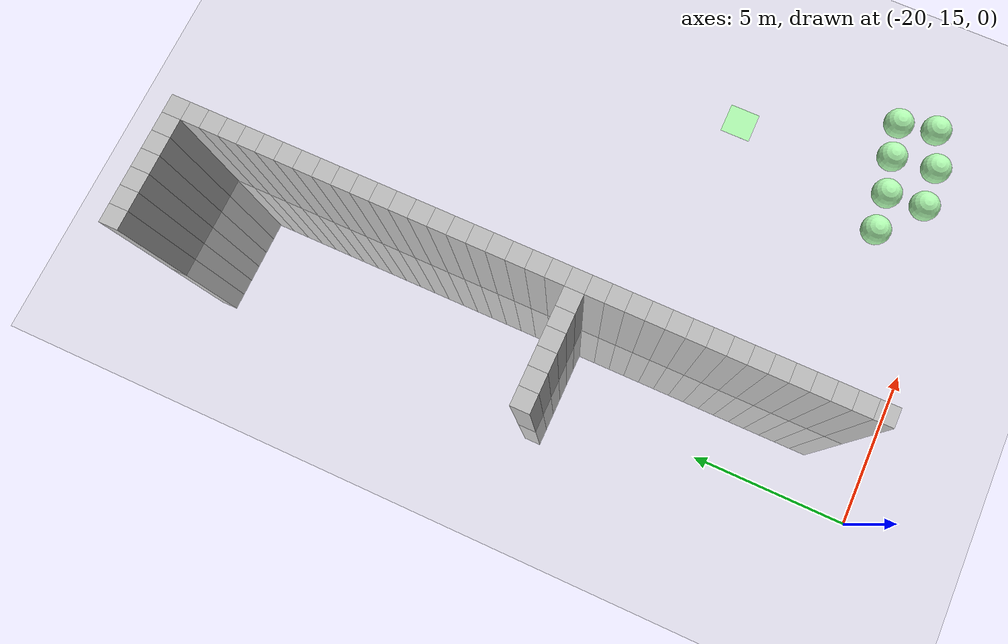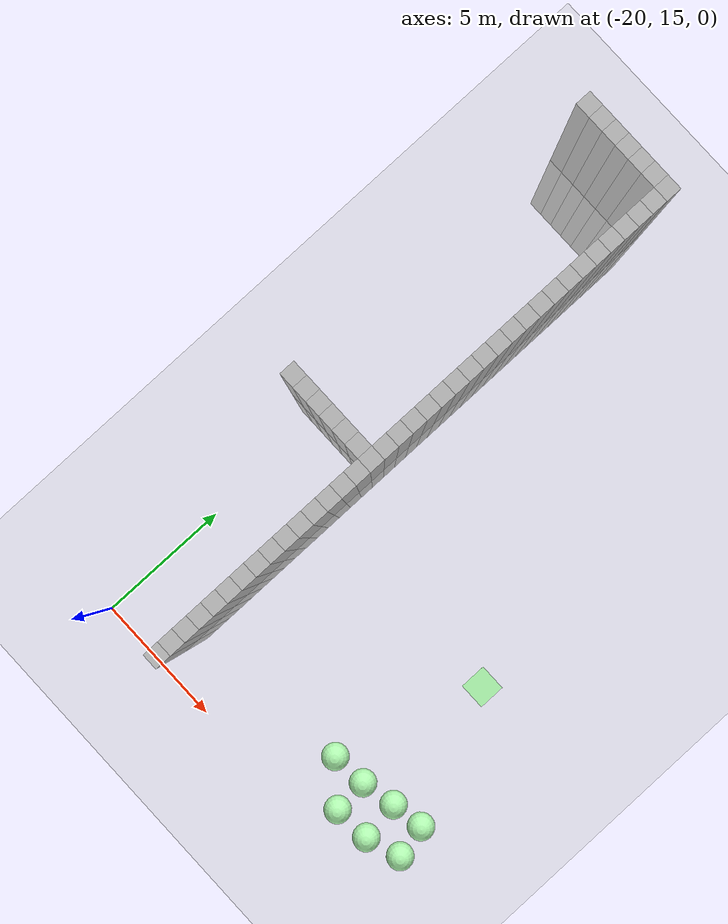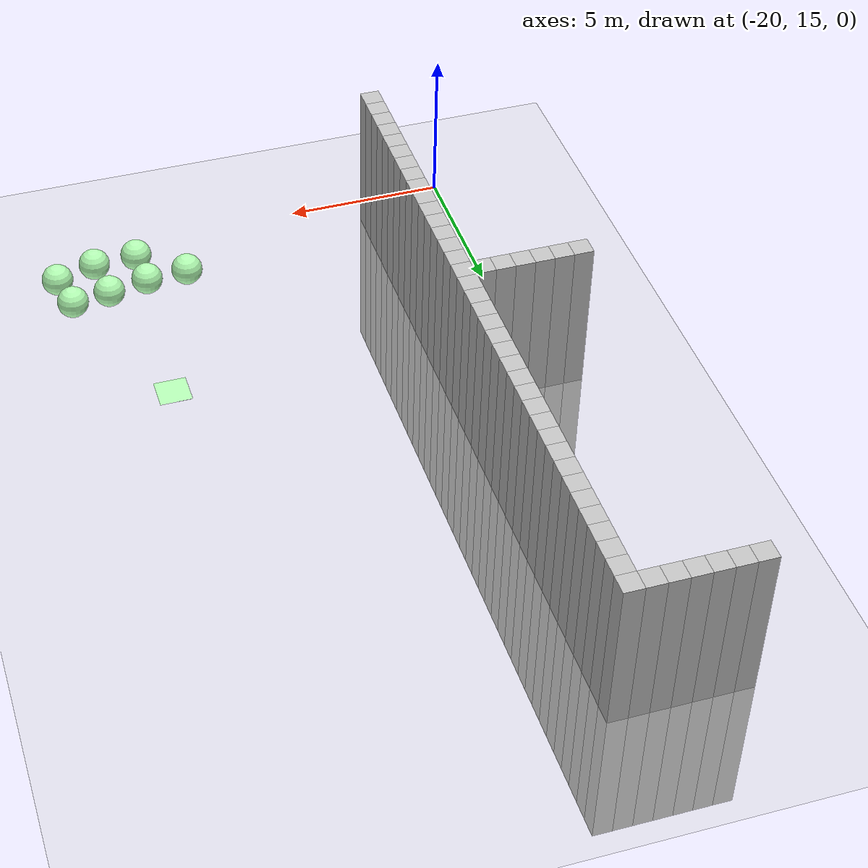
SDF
<sdf version="1.6">
 <world name="default">
  <model name="ground_plane">
   <static>1</static>
   <link name="link">
    <collision name="collision">
     <geometry><plane><normal>0 0 1</normal><size>100 100</size></plane></geometry>
     <surface><friction><ode><mu>100</mu><mu2>50</mu2></ode></friction></surface>
    </collision>
    <visual name="visual">
     <cast_shadows>0</cast_shadows>
     <geometry><plane><normal>0 0 1</normal><size>100 100</size></plane></geometry>
     <material>
      <script><uri>file://media/materials/scripts/gazebo.material</uri><name>Gazebo/Grey</name></script>
     </material>
    </visual>
   </link>
  </model>
  <model name="unit_cylinder_455">
   <static>1</static>
   <pose>-21 25.2 0 0 -0 0</pose>
   <link name="link">
    <inertial>
     <mass>1</mass>
     <inertia><ixx>0.145833</ixx><ixy>0</ixy><ixz>0</ixz><iyy>0.145833</iyy><iyz>0</iyz><izz>0.125</izz></inertia>
    </inertial>
    <collision name="collision"><geometry><box><size>0.6 0.6 10</size></box></geometry></collision>
    <visual name="visual">
     <geometry><box><size>0.6 0.6 10</size></box></geometry>
     <material><ambient>0.753 0.753 0.753 1</ambient><diffuse>0.753 0.753 0.753 1</diffuse></material>
     <material>
      <script><name>Gazebo/Grey</name><uri>file://media/materials/scripts/gazebo.material</uri></script>
     </material>
    </visual>
   </link>
  </model>
  <model name="unit_cylinder_456">
   <static>1</static>
   <pose>-21 37.8 0 0 -0 0</pose>
   <link name="link">
    <inertial>
     <mass>1</mass>
     <inertia><ixx>0.145833</ixx><ixy>0</ixy><ixz>0</ixz><iyy>0.145833</iyy><iyz>0</iyz><izz>0.125</izz></inertia>
    </inertial>
    <collision name="collision"><geometry><box><size>0.6 0.6 10</size></box></geometry></collision>
    <visual name="visual">
     <geometry><box><size>0.6 0.6 10</size></box></geometry>
     <material><ambient>0.753 0.753 0.753 1</ambient><diffuse>0.753 0.753 0.753 1</diffuse></material>
     <material>
      <script><name>Gazebo/Grey</name><uri>file://media/materials/scripts/gazebo.material</uri></script>
     </material>
    </visual>
   </link>
  </model>
  <model name="unit_cylinder_459">
   <static>1</static>
   <pose>-20.4 25.2 0 0 -0 0</pose>
   <link name="link">
    <inertial>
     <mass>1</mass>
     <inertia><ixx>0.145833</ixx><ixy>0</ixy><ixz>0</ixz><iyy>0.145833</iyy><iyz>0</iyz><izz>0.125</izz></inertia>
    </inertial>
    <collision name="collision"><geometry><box><size>0.6 0.6 10</size></box></geometry></collision>
    <visual name="visual">
     <geometry><box><size>0.6 0.6 10</size></box></geometry>
     <material><ambient>0.753 0.753 0.753 1</ambient><diffuse>0.753 0.753 0.753 1</diffuse></material>
     <material>
      <script><name>Gazebo/Grey</name><uri>file://media/materials/scripts/gazebo.material</uri></script>
     </material>
    </visual>
   </link>
  </model>
  <model name="unit_cylinder_460">
   <static>1</static>
   <pose>-20.4 37.8 0 0 -0 0</pose>
   <link name="link">
    <inertial>
     <mass>1</mass>
     <inertia><ixx>0.145833</ixx><ixy>0</ixy><ixz>0</ixz><iyy>0.145833</iyy><iyz>0</iyz><izz>0.125</izz></inertia>
    </inertial>
    <collision name="collision"><geometry><box><size>0.6 0.6 10</size></box></geometry></collision>
    <visual name="visual">
     <geometry><box><size>0.6 0.6 10</size></box></geometry>
     <material><ambient>0.753 0.753 0.753 1</ambient><diffuse>0.753 0.753 0.753 1</diffuse></material>
     <material>
      <script><name>Gazebo/Grey</name><uri>file://media/materials/scripts/gazebo.material</uri></script>
     </material>
    </visual>
   </link>
  </model>
  <model name="unit_cylinder_463">
   <static>1</static>
   <pose>-19.8 25.2 0 0 -0 0</pose>
   <link name="link">
    <inertial>
     <mass>1</mass>
     <inertia><ixx>0.145833</ixx><ixy>0</ixy><ixz>0</ixz><iyy>0.145833</iyy><iyz>0</iyz><izz>0.125</izz></inertia>
    </inertial>
    <collision name="collision"><geometry><box><size>0.6 0.6 10</size></box></geometry></collision>
    <visual name="visual">
     <geometry><box><size>0.6 0.6 10</size></box></geometry>
     <material><ambient>0.753 0.753 0.753 1</ambient><diffuse>0.753 0.753 0.753 1</diffuse></material>
     <material>
      <script><name>Gazebo/Grey</name><uri>file://media/materials/scripts/gazebo.material</uri></script>
     </material>
    </visual>
   </link>
  </model>
  <model name="unit_cylinder_464">
   <static>1</static>
   <pose>-19.8 37.8 0 0 -0 0</pose>
   <link name="link">
    <inertial>
     <mass>1</mass>
     <inertia><ixx>0.145833</ixx><ixy>0</ixy><ixz>0</ixz><iyy>0.145833</iyy><iyz>0</iyz><izz>0.125</izz></inertia>
    </inertial>
    <collision name="collision"><geometry><box><size>0.6 0.6 10</size></box></geometry></collision>
    <visual name="visual">
     <geometry><box><size>0.6 0.6 10</size></box></geometry>
     <material><ambient>0.753 0.753 0.753 1</ambient><diffuse>0.753 0.753 0.753 1</diffuse></material>
     <material>
      <script><name>Gazebo/Grey</name><uri>file://media/materials/scripts/gazebo.material</uri></script>
     </material>
    </visual>
   </link>
  </model>
  <model name="unit_cylinder_467">
   <static>1</static>
   <pose>-19.2 25.2 0 0 -0 0</pose>
   <link name="link">
    <inertial>
     <mass>1</mass>
     <inertia><ixx>0.145833</ixx><ixy>0</ixy><ixz>0</ixz><iyy>0.145833</iyy><iyz>0</iyz><izz>0.125</izz></inertia>
    </inertial>
    <collision name="collision"><geometry><box><size>0.6 0.6 10</size></box></geometry></collision>
    <visual name="visual">
     <geometry><box><size>0.6 0.6 10</size></box></geometry>
     <material><ambient>0.753 0.753 0.753 1</ambient><diffuse>0.753 0.753 0.753 1</diffuse></material>
     <material>
      <script><name>Gazebo/Grey</name><uri>file://media/materials/scripts/gazebo.material</uri></script>
     </material>
    </visual>
   </link>
  </model>
  <model name="unit_cylinder_468">
   <static>1</static>
   <pose>-19.2 37.8 0 0 -0 0</pose>
   <link name="link">
    <inertial>
     <mass>1</mass>
     <inertia><ixx>0.145833</ixx><ixy>0</ixy><ixz>0</ixz><iyy>0.145833</iyy><iyz>0</iyz><izz>0.125</izz></inertia>
    </inertial>
    <collision name="collision"><geometry><box><size>0.6 0.6 10</size></box></geometry></collision>
    <visual name="visual">
     <geometry><box><size>0.6 0.6 10</size></box></geometry>
     <material><ambient>0.753 0.753 0.753 1</ambient><diffuse>0.753 0.753 0.753 1</diffuse></material>
     <material>
      <script><name>Gazebo/Grey</name><uri>file://media/materials/scripts/gazebo.material</uri></script>
     </material>
    </visual>
   </link>
  </model>
  <model name="unit_cylinder_471">
   <static>1</static>
   <pose>-18.6 25.2 0 0 -0 0</pose>
   <link name="link">
    <inertial>
     <mass>1</mass>
     <inertia><ixx>0.145833</ixx><ixy>0</ixy><ixz>0</ixz><iyy>0.145833</iyy><iyz>0</iyz><izz>0.125</izz></inertia>
    </inertial>
    <collision name="collision"><geometry><box><size>0.6 0.6 10</size></box></geometry></collision>
    <visual name="visual">
     <geometry><box><size>0.6 0.6 10</size></box></geometry>
     <material><ambient>0.753 0.753 0.753 1</ambient><diffuse>0.753 0.753 0.753 1</diffuse></material>
     <material>
      <script><name>Gazebo/Grey</name><uri>file://media/materials/scripts/gazebo.material</uri></script>
     </material>
    </visual>
   </link>
  </model>
  <model name="unit_cylinder_472">
   <static>1</static>
   <pose>-18.6 37.8 0 0 -0 0</pose>
   <link name="link">
    <inertial>
     <mass>1</mass>
     <inertia><ixx>0.145833</ixx><ixy>0</ixy><ixz>0</ixz><iyy>0.145833</iyy><iyz>0</iyz><izz>0.125</izz></inertia>
    </inertial>
    <collision name="collision"><geometry><box><size>0.6 0.6 10</size></box></geometry></collision>
    <visual name="visual">
     <geometry><box><size>0.6 0.6 10</size></box></geometry>
     <material><ambient>0.753 0.753 0.753 1</ambient><diffuse>0.753 0.753 0.753 1</diffuse></material>
     <material>
      <script><name>Gazebo/Grey</name><uri>file://media/materials/scripts/gazebo.material</uri></script>
     </material>
    </visual>
   </link>
  </model>
  <model name="unit_cylinder_475">
   <static>1</static>
   <pose>-18 25.2 0 0 -0 0</pose>
   <link name="link">
    <inertial>
     <mass>1</mass>
     <inertia><ixx>0.145833</ixx><ixy>0</ixy><ixz>0</ixz><iyy>0.145833</iyy><iyz>0</iyz><izz>0.125</izz></inertia>
    </inertial>
    <collision name="collision"><geometry><box><size>0.6 0.6 10</size></box></geometry></collision>
    <visual name="visual">
     <geometry><box><size>0.6 0.6 10</size></box></geometry>
     <material><ambient>0.753 0.753 0.753 1</ambient><diffuse>0.753 0.753 0.753 1</diffuse></material>
     <material>
      <script><name>Gazebo/Grey</name><uri>file://media/materials/scripts/gazebo.material</uri></script>
     </material>
    </visual>
   </link>
  </model>
  <model name="unit_cylinder_476">
   <static>1</static>
   <pose>-18 37.8 0 0 -0 0</pose>
   <link name="link">
    <inertial>
     <mass>1</mass>
     <inertia><ixx>0.145833</ixx><ixy>0</ixy><ixz>0</ixz><iyy>0.145833</iyy><iyz>0</iyz><izz>0.125</izz></inertia>
    </inertial>
    <collision name="collision"><geometry><box><size>0.6 0.6 10</size></box></geometry></collision>
    <visual name="visual">
     <geometry><box><size>0.6 0.6 10</size></box></geometry>
     <material><ambient>0.753 0.753 0.753 1</ambient><diffuse>0.753 0.753 0.753 1</diffuse></material>
     <material>
      <script><name>Gazebo/Grey</name><uri>file://media/materials/scripts/gazebo.material</uri></script>
     </material>
    </visual>
   </link>
  </model>
  <model name="unit_cylinder_504">
   <static>1</static>
   <pose>-17.4 16.2 0 0 -0 0</pose>
   <link name="link">
    <inertial>
     <mass>1</mass>
     <inertia><ixx>0.145833</ixx><ixy>0</ixy><ixz>0</ixz><iyy>0.145833</iyy><iyz>0</iyz><izz>0.125</izz></inertia>
    </inertial>
    <collision name="collision"><geometry><box><size>0.6 0.6 10</size></box></geometry></collision>
    <visual name="visual">
     <geometry><box><size>0.6 0.6 10</size></box></geometry>
     <material><ambient>0.753 0.753 0.753 1</ambient><diffuse>0.753 0.753 0.753 1</diffuse></material>
     <material>
      <script><name>Gazebo/Grey</name><uri>file://media/materials/scripts/gazebo.material</uri></script>
     </material>
    </visual>
   </link>
  </model>
  <model name="unit_cylinder_505">
   <static>1</static>
   <pose>-17.4 16.8 0 0 -0 0</pose>
   <link name="link">
    <inertial>
     <mass>1</mass>
     <inertia><ixx>0.145833</ixx><ixy>0</ixy><ixz>0</ixz><iyy>0.145833</iyy><iyz>0</iyz><izz>0.125</izz></inertia>
    </inertial>
    <collision name="collision"><geometry><box><size>0.6 0.6 10</size></box></geometry></collision>
    <visual name="visual">
     <geometry><box><size>0.6 0.6 10</size></box></geometry>
     <material><ambient>0.753 0.753 0.753 1</ambient><diffuse>0.753 0.753 0.753 1</diffuse></material>
     <material>
      <script><name>Gazebo/Grey</name><uri>file://media/materials/scripts/gazebo.material</uri></script>
     </material>
    </visual>
   </link>
  </model>
  <model name="unit_cylinder_506">
   <static>1</static>
   <pose>-17.4 17.4 0 0 -0 0</pose>
   <link name="link">
    <inertial>
     <mass>1</mass>
     <inertia><ixx>0.145833</ixx><ixy>0</ixy><ixz>0</ixz><iyy>0.145833</iyy><iyz>0</iyz><izz>0.125</izz></inertia>
    </inertial>
    <collision name="collision"><geometry><box><size>0.6 0.6 10</size></box></geometry></collision>
    <visual name="visual">
     <geometry><box><size>0.6 0.6 10</size></box></geometry>
     <material><ambient>0.753 0.753 0.753 1</ambient><diffuse>0.753 0.753 0.753 1</diffuse></material>
     <material>
      <script><name>Gazebo/Grey</name><uri>file://media/materials/scripts/gazebo.material</uri></script>
     </material>
    </visual>
   </link>
  </model>
  <model name="unit_cylinder_507">
   <static>1</static>
   <pose>-17.4 18 0 0 -0 0</pose>
   <link name="link">
    <inertial>
     <mass>1</mass>
     <inertia><ixx>0.145833</ixx><ixy>0</ixy><ixz>0</ixz><iyy>0.145833</iyy><iyz>0</iyz><izz>0.125</izz></inertia>
    </inertial>
    <collision name="collision"><geometry><box><size>0.6 0.6 10</size></box></geometry></collision>
    <visual name="visual">
     <geometry><box><size>0.6 0.6 10</size></box></geometry>
     <material><ambient>0.753 0.753 0.753 1</ambient><diffuse>0.753 0.753 0.753 1</diffuse></material>
     <material>
      <script><name>Gazebo/Grey</name><uri>file://media/materials/scripts/gazebo.material</uri></script>
     </material>
    </visual>
   </link>
  </model>
  <model name="unit_cylinder_508">
   <static>1</static>
   <pose>-17.4 18.6 0 0 -0 0</pose>
   <link name="link">
    <inertial>
     <mass>1</mass>
     <inertia><ixx>0.145833</ixx><ixy>0</ixy><ixz>0</ixz><iyy>0.145833</iyy><iyz>0</iyz><izz>0.125</izz></inertia>
    </inertial>
    <collision name="collision"><geometry><box><size>0.6 0.6 10</size></box></geometry></collision>
    <visual name="visual">
     <geometry><box><size>0.6 0.6 10</size></box></geometry>
     <material><ambient>0.753 0.753 0.753 1</ambient><diffuse>0.753 0.753 0.753 1</diffuse></material>
     <material>
      <script><name>Gazebo/Grey</name><uri>file://media/materials/scripts/gazebo.material</uri></script>
     </material>
    </visual>
   </link>
  </model>
  <model name="unit_cylinder_509">
   <static>1</static>
   <pose>-17.4 19.2 0 0 -0 0</pose>
   <link name="link">
    <inertial>
     <mass>1</mass>
     <inertia><ixx>0.145833</ixx><ixy>0</ixy><ixz>0</ixz><iyy>0.145833</iyy><iyz>0</iyz><izz>0.125</izz></inertia>
    </inertial>
    <collision name="collision"><geometry><box><size>0.6 0.6 10</size></box></geometry></collision>
    <visual name="visual">
     <geometry><box><size>0.6 0.6 10</size></box></geometry>
     <material><ambient>0.753 0.753 0.753 1</ambient><diffuse>0.753 0.753 0.753 1</diffuse></material>
     <material>
      <script><name>Gazebo/Grey</name><uri>file://media/materials/scripts/gazebo.material</uri></script>
     </material>
    </visual>
   </link>
  </model>
  <model name="unit_cylinder_510">
   <static>1</static>
   <pose>-17.4 19.8 0 0 -0 0</pose>
   <link name="link">
    <inertial>
     <mass>1</mass>
     <inertia><ixx>0.145833</ixx><ixy>0</ixy><ixz>0</ixz><iyy>0.145833</iyy><iyz>0</iyz><izz>0.125</izz></inertia>
    </inertial>
    <collision name="collision"><geometry><box><size>0.6 0.6 10</size></box></geometry></collision>
    <visual name="visual">
     <geometry><box><size>0.6 0.6 10</size></box></geometry>
     <material><ambient>0.753 0.753 0.753 1</ambient><diffuse>0.753 0.753 0.753 1</diffuse></material>
     <material>
      <script><name>Gazebo/Grey</name><uri>file://media/materials/scripts/gazebo.material</uri></script>
     </material>
    </visual>
   </link>
  </model>
  <model name="unit_cylinder_511">
   <static>1</static>
   <pose>-17.4 20.4 0 0 -0 0</pose>
   <link name="link">
    <inertial>
     <mass>1</mass>
     <inertia><ixx>0.145833</ixx><ixy>0</ixy><ixz>0</ixz><iyy>0.145833</iyy><iyz>0</iyz><izz>0.125</izz></inertia>
    </inertial>
    <collision name="collision"><geometry><box><size>0.6 0.6 10</size></box></geometry></collision>
    <visual name="visual">
     <geometry><box><size>0.6 0.6 10</size></box></geometry>
     <material><ambient>0.753 0.753 0.753 1</ambient><diffuse>0.753 0.753 0.753 1</diffuse></material>
     <material>
      <script><name>Gazebo/Grey</name><uri>file://media/materials/scripts/gazebo.material</uri></script>
     </material>
    </visual>
   </link>
  </model>
  <model name="unit_cylinder_512">
   <static>1</static>
   <pose>-17.4 21 0 0 -0 0</pose>
   <link name="link">
    <inertial>
     <mass>1</mass>
     <inertia><ixx>0.145833</ixx><ixy>0</ixy><ixz>0</ixz><iyy>0.145833</iyy><iyz>0</iyz><izz>0.125</izz></inertia>
    </inertial>
    <collision name="collision"><geometry><box><size>0.6 0.6 10</size></box></geometry></collision>
    <visual name="visual">
     <geometry><box><size>0.6 0.6 10</size></box></geometry>
     <material><ambient>0.753 0.753 0.753 1</ambient><diffuse>0.753 0.753 0.753 1</diffuse></material>
     <material>
      <script><name>Gazebo/Grey</name><uri>file://media/materials/scripts/gazebo.material</uri></script>
     </material>
    </visual>
   </link>
  </model>
  <model name="unit_cylinder_513">
   <static>1</static>
   <pose>-17.4 21.6 0 0 -0 0</pose>
   <link name="link">
    <inertial>
     <mass>1</mass>
     <inertia><ixx>0.145833</ixx><ixy>0</ixy><ixz>0</ixz><iyy>0.145833</iyy><iyz>0</iyz><izz>0.125</izz></inertia>
    </inertial>
    <collision name="collision"><geometry><box><size>0.6 0.6 10</size></box></geometry></collision>
    <visual name="visual">
     <geometry><box><size>0.6 0.6 10</size></box></geometry>
     <material><ambient>0.753 0.753 0.753 1</ambient><diffuse>0.753 0.753 0.753 1</diffuse></material>
     <material>
      <script><name>Gazebo/Grey</name><uri>file://media/materials/scripts/gazebo.material</uri></script>
     </material>
    </visual>
   </link>
  </model>
  <model name="unit_cylinder_514">
   <static>1</static>
   <pose>-17.4 22.2 0 0 -0 0</pose>
   <link name="link">
    <inertial>
     <mass>1</mass>
     <inertia><ixx>0.145833</ixx><ixy>0</ixy><ixz>0</ixz><iyy>0.145833</iyy><iyz>0</iyz><izz>0.125</izz></inertia>
    </inertial>
    <collision name="collision"><geometry><box><size>0.6 0.6 10</size></box></geometry></collision>
    <visual name="visual">
     <geometry><box><size>0.6 0.6 10</size></box></geometry>
     <material><ambient>0.753 0.753 0.753 1</ambient><diffuse>0.753 0.753 0.753 1</diffuse></material>
     <material>
      <script><name>Gazebo/Grey</name><uri>file://media/materials/scripts/gazebo.material</uri></script>
     </material>
    </visual>
   </link>
  </model>
  <model name="unit_cylinder_515">
   <static>1</static>
   <pose>-17.4 22.8 0 0 -0 0</pose>
   <link name="link">
    <inertial>
     <mass>1</mass>
     <inertia><ixx>0.145833</ixx><ixy>0</ixy><ixz>0</ixz><iyy>0.145833</iyy><iyz>0</iyz><izz>0.125</izz></inertia>
    </inertial>
    <collision name="collision"><geometry><box><size>0.6 0.6 10</size></box></geometry></collision>
    <visual name="visual">
     <geometry><box><size>0.6 0.6 10</size></box></geometry>
     <material><ambient>0.753 0.753 0.753 1</ambient><diffuse>0.753 0.753 0.753 1</diffuse></material>
     <material>
      <script><name>Gazebo/Grey</name><uri>file://media/materials/scripts/gazebo.material</uri></script>
     </material>
    </visual>
   </link>
  </model>
  <model name="unit_cylinder_516">
   <static>1</static>
   <pose>-17.4 23.4 0 0 -0 0</pose>
   <link name="link">
    <inertial>
     <mass>1</mass>
     <inertia><ixx>0.145833</ixx><ixy>0</ixy><ixz>0</ixz><iyy>0.145833</iyy><iyz>0</iyz><izz>0.125</izz></inertia>
    </inertial>
    <collision name="collision"><geometry><box><size>0.6 0.6 10</size></box></geometry></collision>
    <visual name="visual">
     <geometry><box><size>0.6 0.6 10</size></box></geometry>
     <material><ambient>0.753 0.753 0.753 1</ambient><diffuse>0.753 0.753 0.753 1</diffuse></material>
     <material>
      <script><name>Gazebo/Grey</name><uri>file://media/materials/scripts/gazebo.material</uri></script>
     </material>
    </visual>
   </link>
  </model>
  <model name="unit_cylinder_517">
   <static>1</static>
   <pose>-17.4 24 0 0 -0 0</pose>
   <link name="link">
    <inertial>
     <mass>1</mass>
     <inertia><ixx>0.145833</ixx><ixy>0</ixy><ixz>0</ixz><iyy>0.145833</iyy><iyz>0</iyz><izz>0.125</izz></inertia>
    </inertial>
    <collision name="collision"><geometry><box><size>0.6 0.6 10</size></box></geometry></collision>
    <visual name="visual">
     <geometry><box><size>0.6 0.6 10</size></box></geometry>
     <material><ambient>0.753 0.753 0.753 1</ambient><diffuse>0.753 0.753 0.753 1</diffuse></material>
     <material>
      <script><name>Gazebo/Grey</name><uri>file://media/materials/scripts/gazebo.material</uri></script>
     </material>
    </visual>
   </link>
  </model>
  <model name="unit_cylinder_518">
   <static>1</static>
   <pose>-17.4 24.6 0 0 -0 0</pose>
   <link name="link">
    <inertial>
     <mass>1</mass>
     <inertia><ixx>0.145833</ixx><ixy>0</ixy><ixz>0</ixz><iyy>0.145833</iyy><iyz>0</iyz><izz>0.125</izz></inertia>
    </inertial>
    <collision name="collision"><geometry><box><size>0.6 0.6 10</size></box></geometry></collision>
    <visual name="visual">
     <geometry><box><size>0.6 0.6 10</size></box></geometry>
     <material><ambient>0.753 0.753 0.753 1</ambient><diffuse>0.753 0.753 0.753 1</diffuse></material>
     <material>
      <script><name>Gazebo/Grey</name><uri>file://media/materials/scripts/gazebo.material</uri></script>
     </material>
    </visual>
   </link>
  </model>
  <model name="unit_cylinder_519">
   <static>1</static>
   <pose>-17.4 25.2 0 0 -0 0</pose>
   <link name="link">
    <inertial>
     <mass>1</mass>
     <inertia><ixx>0.145833</ixx><ixy>0</ixy><ixz>0</ixz><iyy>0.145833</iyy><iyz>0</iyz><izz>0.125</izz></inertia>
    </inertial>
    <collision name="collision"><geometry><box><size>0.6 0.6 10</size></box></geometry></collision>
    <visual name="visual">
     <geometry><box><size>0.6 0.6 10</size></box></geometry>
     <material><ambient>0.753 0.753 0.753 1</ambient><diffuse>0.753 0.753 0.753 1</diffuse></material>
     <material>
      <script><name>Gazebo/Grey</name><uri>file://media/materials/scripts/gazebo.material</uri></script>
     </material>
    </visual>
   </link>
  </model>
  <model name="unit_cylinder_520">
   <static>1</static>
   <pose>-17.4 25.8 0 0 -0 0</pose>
   <link name="link">
    <inertial>
     <mass>1</mass>
     <inertia><ixx>0.145833</ixx><ixy>0</ixy><ixz>0</ixz><iyy>0.145833</iyy><iyz>0</iyz><izz>0.125</izz></inertia>
    </inertial>
    <collision name="collision"><geometry><box><size>0.6 0.6 10</size></box></geometry></collision>
    <visual name="visual">
     <geometry><box><size>0.6 0.6 10</size></box></geometry>
     <material><ambient>0.753 0.753 0.753 1</ambient><diffuse>0.753 0.753 0.753 1</diffuse></material>
     <material>
      <script><name>Gazebo/Grey</name><uri>file://media/materials/scripts/gazebo.material</uri></script>
     </material>
    </visual>
   </link>
  </model>
  <model name="unit_cylinder_521">
   <static>1</static>
   <pose>-17.4 26.4 0 0 -0 0</pose>
   <link name="link">
    <inertial>
     <mass>1</mass>
     <inertia><ixx>0.145833</ixx><ixy>0</ixy><ixz>0</ixz><iyy>0.145833</iyy><iyz>0</iyz><izz>0.125</izz></inertia>
    </inertial>
    <collision name="collision"><geometry><box><size>0.6 0.6 10</size></box></geometry></collision>
    <visual name="visual">
     <geometry><box><size>0.6 0.6 10</size></box></geometry>
     <material><ambient>0.753 0.753 0.753 1</ambient><diffuse>0.753 0.753 0.753 1</diffuse></material>
     <material>
      <script><name>Gazebo/Grey</name><uri>file://media/materials/scripts/gazebo.material</uri></script>
     </material>
    </visual>
   </link>
  </model>
  <model name="unit_cylinder_522">
   <static>1</static>
   <pose>-17.4 27 0 0 -0 0</pose>
   <link name="link">
    <inertial>
     <mass>1</mass>
     <inertia><ixx>0.145833</ixx><ixy>0</ixy><ixz>0</ixz><iyy>0.145833</iyy><iyz>0</iyz><izz>0.125</izz></inertia>
    </inertial>
    <collision name="collision"><geometry><box><size>0.6 0.6 10</size></box></geometry></collision>
    <visual name="visual">
     <geometry><box><size>0.6 0.6 10</size></box></geometry>
     <material><ambient>0.753 0.753 0.753 1</ambient><diffuse>0.753 0.753 0.753 1</diffuse></material>
     <material>
      <script><name>Gazebo/Grey</name><uri>file://media/materials/scripts/gazebo.material</uri></script>
     </material>
    </visual>
   </link>
  </model>
  <model name="unit_cylinder_523">
   <static>1</static>
   <pose>-17.4 27.6 0 0 -0 0</pose>
   <link name="link">
    <inertial>
     <mass>1</mass>
     <inertia><ixx>0.145833</ixx><ixy>0</ixy><ixz>0</ixz><iyy>0.145833</iyy><iyz>0</iyz><izz>0.125</izz></inertia>
    </inertial>
    <collision name="collision"><geometry><box><size>0.6 0.6 10</size></box></geometry></collision>
    <visual name="visual">
     <geometry><box><size>0.6 0.6 10</size></box></geometry>
     <material><ambient>0.753 0.753 0.753 1</ambient><diffuse>0.753 0.753 0.753 1</diffuse></material>
     <material>
      <script><name>Gazebo/Grey</name><uri>file://media/materials/scripts/gazebo.material</uri></script>
     </material>
    </visual>
   </link>
  </model>
  <model name="unit_cylinder_524">
   <static>1</static>
   <pose>-17.4 28.2 0 0 -0 0</pose>
   <link name="link">
    <inertial>
     <mass>1</mass>
     <inertia><ixx>0.145833</ixx><ixy>0</ixy><ixz>0</ixz><iyy>0.145833</iyy><iyz>0</iyz><izz>0.125</izz></inertia>
    </inertial>
    <collision name="collision"><geometry><box><size>0.6 0.6 10</size></box></geometry></collision>
    <visual name="visual">
     <geometry><box><size>0.6 0.6 10</size></box></geometry>
     <material><ambient>0.753 0.753 0.753 1</ambient><diffuse>0.753 0.753 0.753 1</diffuse></material>
     <material>
      <script><name>Gazebo/Grey</name><uri>file://media/materials/scripts/gazebo.material</uri></script>
     </material>
    </visual>
   </link>
  </model>
  <model name="unit_cylinder_525">
   <static>1</static>
   <pose>-17.4 28.8 0 0 -0 0</pose>
   <link name="link">
    <inertial>
     <mass>1</mass>
     <inertia><ixx>0.145833</ixx><ixy>0</ixy><ixz>0</ixz><iyy>0.145833</iyy><iyz>0</iyz><izz>0.125</izz></inertia>
    </inertial>
    <collision name="collision"><geometry><box><size>0.6 0.6 10</size></box></geometry></collision>
    <visual name="visual">
     <geometry><box><size>0.6 0.6 10</size></box></geometry>
     <material><ambient>0.753 0.753 0.753 1</ambient><diffuse>0.753 0.753 0.753 1</diffuse></material>
     <material>
      <script><name>Gazebo/Grey</name><uri>file://media/materials/scripts/gazebo.material</uri></script>
     </material>
    </visual>
   </link>
  </model>
  <model name="unit_cylinder_526">
   <static>1</static>
   <pose>-17.4 29.4 0 0 -0 0</pose>
   <link name="link">
    <inertial>
     <mass>1</mass>
     <inertia><ixx>0.145833</ixx><ixy>0</ixy><ixz>0</ixz><iyy>0.145833</iyy><iyz>0</iyz><izz>0.125</izz></inertia>
    </inertial>
    <collision name="collision"><geometry><box><size>0.6 0.6 10</size></box></geometry></collision>
    <visual name="visual">
     <geometry><box><size>0.6 0.6 10</size></box></geometry>
     <material><ambient>0.753 0.753 0.753 1</ambient><diffuse>0.753 0.753 0.753 1</diffuse></material>
     <material>
      <script><name>Gazebo/Grey</name><uri>file://media/materials/scripts/gazebo.material</uri></script>
     </material>
    </visual>
   </link>
  </model>
  <model name="unit_cylinder_527">
   <static>1</static>
   <pose>-17.4 30 0 0 -0 0</pose>
   <link name="link">
    <inertial>
     <mass>1</mass>
     <inertia><ixx>0.145833</ixx><ixy>0</ixy><ixz>0</ixz><iyy>0.145833</iyy><iyz>0</iyz><izz>0.125</izz></inertia>
    </inertial>
    <collision name="collision"><geometry><box><size>0.6 0.6 10</size></box></geometry></collision>
    <visual name="visual">
     <geometry><box><size>0.6 0.6 10</size></box></geometry>
     <material><ambient>0.753 0.753 0.753 1</ambient><diffuse>0.753 0.753 0.753 1</diffuse></material>
     <material>
      <script><name>Gazebo/Grey</name><uri>file://media/materials/scripts/gazebo.material</uri></script>
     </material>
    </visual>
   </link>
  </model>
  <model name="unit_cylinder_528">
   <static>1</static>
   <pose>-17.4 30.6 0 0 -0 0</pose>
   <link name="link">
    <inertial>
     <mass>1</mass>
     <inertia><ixx>0.145833</ixx><ixy>0</ixy><ixz>0</ixz><iyy>0.145833</iyy><iyz>0</iyz><izz>0.125</izz></inertia>
    </inertial>
    <collision name="collision"><geometry><box><size>0.6 0.6 10</size></box></geometry></collision>
    <visual name="visual">
     <geometry><box><size>0.6 0.6 10</size></box></geometry>
     <material><ambient>0.753 0.753 0.753 1</ambient><diffuse>0.753 0.753 0.753 1</diffuse></material>
     <material>
      <script><name>Gazebo/Grey</name><uri>file://media/materials/scripts/gazebo.material</uri></script>
     </material>
    </visual>
   </link>
  </model>
  <model name="unit_cylinder_529">
   <static>1</static>
   <pose>-17.4 31.2 0 0 -0 0</pose>
   <link name="link">
    <inertial>
     <mass>1</mass>
     <inertia><ixx>0.145833</ixx><ixy>0</ixy><ixz>0</ixz><iyy>0.145833</iyy><iyz>0</iyz><izz>0.125</izz></inertia>
    </inertial>
    <collision name="collision"><geometry><box><size>0.6 0.6 10</size></box></geometry></collision>
    <visual name="visual">
     <geometry><box><size>0.6 0.6 10</size></box></geometry>
     <material><ambient>0.753 0.753 0.753 1</ambient><diffuse>0.753 0.753 0.753 1</diffuse></material>
     <material>
      <script><name>Gazebo/Grey</name><uri>file://media/materials/scripts/gazebo.material</uri></script>
     </material>
    </visual>
   </link>
  </model>
  <model name="unit_cylinder_530">
   <static>1</static>
   <pose>-17.4 31.8 0 0 -0 0</pose>
   <link name="link">
    <inertial>
     <mass>1</mass>
     <inertia><ixx>0.145833</ixx><ixy>0</ixy><ixz>0</ixz><iyy>0.145833</iyy><iyz>0</iyz><izz>0.125</izz></inertia>
    </inertial>
    <collision name="collision"><geometry><box><size>0.6 0.6 10</size></box></geometry></collision>
    <visual name="visual">
     <geometry><box><size>0.6 0.6 10</size></box></geometry>
     <material><ambient>0.753 0.753 0.753 1</ambient><diffuse>0.753 0.753 0.753 1</diffuse></material>
     <material>
      <script><name>Gazebo/Grey</name><uri>file://media/materials/scripts/gazebo.material</uri></script>
     </material>
    </visual>
   </link>
  </model>
  <model name="unit_cylinder_531">
   <static>1</static>
   <pose>-17.4 32.4 0 0 -0 0</pose>
   <link name="link">
    <inertial>
     <mass>1</mass>
     <inertia><ixx>0.145833</ixx><ixy>0</ixy><ixz>0</ixz><iyy>0.145833</iyy><iyz>0</iyz><izz>0.125</izz></inertia>
    </inertial>
    <collision name="collision"><geometry><box><size>0.6 0.6 10</size></box></geometry></collision>
    <visual name="visual">
     <geometry><box><size>0.6 0.6 10</size></box></geometry>
     <material><ambient>0.753 0.753 0.753 1</ambient><diffuse>0.753 0.753 0.753 1</diffuse></material>
     <material>
      <script><name>Gazebo/Grey</name><uri>file://media/materials/scripts/gazebo.material</uri></script>
     </material>
    </visual>
   </link>
  </model>
  <model name="unit_cylinder_532">
   <static>1</static>
   <pose>-17.4 33 0 0 -0 0</pose>
   <link name="link">
    <inertial>
     <mass>1</mass>
     <inertia><ixx>0.145833</ixx><ixy>0</ixy><ixz>0</ixz><iyy>0.145833</iyy><iyz>0</iyz><izz>0.125</izz></inertia>
    </inertial>
    <collision name="collision"><geometry><box><size>0.6 0.6 10</size></box></geometry></collision>
    <visual name="visual">
     <geometry><box><size>0.6 0.6 10</size></box></geometry>
     <material><ambient>0.753 0.753 0.753 1</ambient><diffuse>0.753 0.753 0.753 1</diffuse></material>
     <material>
      <script><name>Gazebo/Grey</name><uri>file://media/materials/scripts/gazebo.material</uri></script>
     </material>
    </visual>
   </link>
  </model>
  <model name="unit_cylinder_533">
   <static>1</static>
   <pose>-17.4 33.6 0 0 -0 0</pose>
   <link name="link">
    <inertial>
     <mass>1</mass>
     <inertia><ixx>0.145833</ixx><ixy>0</ixy><ixz>0</ixz><iyy>0.145833</iyy><iyz>0</iyz><izz>0.125</izz></inertia>
    </inertial>
    <collision name="collision"><geometry><box><size>0.6 0.6 10</size></box></geometry></collision>
    <visual name="visual">
     <geometry><box><size>0.6 0.6 10</size></box></geometry>
     <material><ambient>0.753 0.753 0.753 1</ambient><diffuse>0.753 0.753 0.753 1</diffuse></material>
     <material>
      <script><name>Gazebo/Grey</name><uri>file://media/materials/scripts/gazebo.material</uri></script>
     </material>
    </visual>
   </link>
  </model>
  <model name="unit_cylinder_534">
   <static>1</static>
   <pose>-17.4 34.2 0 0 -0 0</pose>
   <link name="link">
    <inertial>
     <mass>1</mass>
     <inertia><ixx>0.145833</ixx><ixy>0</ixy><ixz>0</ixz><iyy>0.145833</iyy><iyz>0</iyz><izz>0.125</izz></inertia>
    </inertial>
    <collision name="collision"><geometry><box><size>0.6 0.6 10</size></box></geometry></collision>
    <visual name="visual">
     <geometry><box><size>0.6 0.6 10</size></box></geometry>
     <material><ambient>0.753 0.753 0.753 1</ambient><diffuse>0.753 0.753 0.753 1</diffuse></material>
     <material>
      <script><name>Gazebo/Grey</name><uri>file://media/materials/scripts/gazebo.material</uri></script>
     </material>
    </visual>
   </link>
  </model>
  <model name="unit_cylinder_535">
   <static>1</static>
   <pose>-17.4 34.8 0 0 -0 0</pose>
   <link name="link">
    <inertial>
     <mass>1</mass>
     <inertia><ixx>0.145833</ixx><ixy>0</ixy><ixz>0</ixz><iyy>0.145833</iyy><iyz>0</iyz><izz>0.125</izz></inertia>
    </inertial>
    <collision name="collision"><geometry><box><size>0.6 0.6 10</size></box></geometry></collision>
    <visual name="visual">
     <geometry><box><size>0.6 0.6 10</size></box></geometry>
     <material><ambient>0.753 0.753 0.753 1</ambient><diffuse>0.753 0.753 0.753 1</diffuse></material>
     <material>
      <script><name>Gazebo/Grey</name><uri>file://media/materials/scripts/gazebo.material</uri></script>
     </material>
    </visual>
   </link>
  </model>
  <model name="unit_cylinder_536">
   <static>1</static>
   <pose>-17.4 35.4 0 0 -0 0</pose>
   <link name="link">
    <inertial>
     <mass>1</mass>
     <inertia><ixx>0.145833</ixx><ixy>0</ixy><ixz>0</ixz><iyy>0.145833</iyy><iyz>0</iyz><izz>0.125</izz></inertia>
    </inertial>
    <collision name="collision"><geometry><box><size>0.6 0.6 10</size></box></geometry></collision>
    <visual name="visual">
     <geometry><box><size>0.6 0.6 10</size></box></geometry>
     <material><ambient>0.753 0.753 0.753 1</ambient><diffuse>0.753 0.753 0.753 1</diffuse></material>
     <material>
      <script><name>Gazebo/Grey</name><uri>file://media/materials/scripts/gazebo.material</uri></script>
     </material>
    </visual>
   </link>
  </model>
  <model name="unit_cylinder_537">
   <static>1</static>
   <pose>-17.4 36 0 0 -0 0</pose>
   <link name="link">
    <inertial>
     <mass>1</mass>
     <inertia><ixx>0.145833</ixx><ixy>0</ixy><ixz>0</ixz><iyy>0.145833</iyy><iyz>0</iyz><izz>0.125</izz></inertia>
    </inertial>
    <collision name="collision"><geometry><box><size>0.6 0.6 10</size></box></geometry></collision>
    <visual name="visual">
     <geometry><box><size>0.6 0.6 10</size></box></geometry>
     <material><ambient>0.753 0.753 0.753 1</ambient><diffuse>0.753 0.753 0.753 1</diffuse></material>
     <material>
      <script><name>Gazebo/Grey</name><uri>file://media/materials/scripts/gazebo.material</uri></script>
     </material>
    </visual>
   </link>
  </model>
  <model name="unit_cylinder_538">
   <static>1</static>
   <pose>-17.4 36.6 0 0 -0 0</pose>
   <link name="link">
    <inertial>
     <mass>1</mass>
     <inertia><ixx>0.145833</ixx><ixy>0</ixy><ixz>0</ixz><iyy>0.145833</iyy><iyz>0</iyz><izz>0.125</izz></inertia>
    </inertial>
    <collision name="collision"><geometry><box><size>0.6 0.6 10</size></box></geometry></collision>
    <visual name="visual">
     <geometry><box><size>0.6 0.6 10</size></box></geometry>
     <material><ambient>0.753 0.753 0.753 1</ambient><diffuse>0.753 0.753 0.753 1</diffuse></material>
     <material>
      <script><name>Gazebo/Grey</name><uri>file://media/materials/scripts/gazebo.material</uri></script>
     </material>
    </visual>
   </link>
  </model>
  <model name="unit_cylinder_539">
   <static>1</static>
   <pose>-17.4 37.2 0 0 -0 0</pose>
   <link name="link">
    <inertial>
     <mass>1</mass>
     <inertia><ixx>0.145833</ixx><ixy>0</ixy><ixz>0</ixz><iyy>0.145833</iyy><iyz>0</iyz><izz>0.125</izz></inertia>
    </inertial>
    <collision name="collision"><geometry><box><size>0.6 0.6 10</size></box></geometry></collision>
    <visual name="visual">
     <geometry><box><size>0.6 0.6 10</size></box></geometry>
     <material><ambient>0.753 0.753 0.753 1</ambient><diffuse>0.753 0.753 0.753 1</diffuse></material>
     <material>
      <script><name>Gazebo/Grey</name><uri>file://media/materials/scripts/gazebo.material</uri></script>
     </material>
    </visual>
   </link>
  </model>
  <model name="unit_cylinder_540">
   <static>1</static>
   <pose>-17.4 37.8 0 0 -0 0</pose>
   <link name="link">
    <inertial>
     <mass>1</mass>
     <inertia><ixx>0.145833</ixx><ixy>0</ixy><ixz>0</ixz><iyy>0.145833</iyy><iyz>0</iyz><izz>0.125</izz></inertia>
    </inertial>
    <collision name="collision"><geometry><box><size>0.6 0.6 10</size></box></geometry></collision>
    <visual name="visual">
     <geometry><box><size>0.6 0.6 10</size></box></geometry>
     <material><ambient>0.753 0.753 0.753 1</ambient><diffuse>0.753 0.753 0.753 1</diffuse></material>
     <material>
      <script><name>Gazebo/Grey</name><uri>file://media/materials/scripts/gazebo.material</uri></script>
     </material>
    </visual>
   </link>
  </model>
  <model name="bouncy_ball">
   <link name="link_0">
    <inertial>
     <mass>0.1</mass>
     <inertia><ixx>1</ixx><ixy>0</ixy><ixz>0</ixz><iyy>1</iyy><iyz>0</iyz><izz>1</izz></inertia>
    </inertial>
    <visual name="visual">
     <geometry><sphere><radius>0.5</radius></sphere></geometry>
     <material>
      <lighting>1</lighting>
      <script><uri>file://media/materials/scripts/gazebo.material</uri><name>Gazebo/Grey</name></script>
      <shader type="pixel"><normal_map>__default__</normal_map></shader>
      <ambient>0 1 0 0</ambient>
      <diffuse>0.7 1 0.7 1</diffuse>
      <specular>0.01 0.01 0.01 1</specular>
      <emissive>0 0 0 1</emissive>
     </material>
    </visual>
    <collision name="collision">
     <geometry><sphere><radius>0.5</radius></sphere></geometry>
     <surface>
      <friction><ode><mu>0</mu><mu2>0</mu2></ode></friction>
      <contact>
       <ode><kp>500000</kp><kd>0</kd><max_vel>1e+26</max_vel><min_depth>0</min_depth></ode>
       <bullet>
        <kp>500000</kp>
        <kd>0</kd>
        <split_impulse>1</split_impulse>
        <split_impulse_penetration_threshold>-0.01</split_impulse_penetration_threshold>
       </bullet>
      </contact>
     </surface>
    </collision>
   </link>
   <static>0</static>
   <pose>-10.8186 17.4304 0.499998 0 -0 0</pose>
  </model>
  <model name="bouncy_ball_clone">
   <link name="link_0">
    <inertial>
     <mass>0.1</mass>
     <inertia><ixx>1</ixx><ixy>0</ixy><ixz>0</ixz><iyy>1</iyy><iyz>0</iyz><izz>1</izz></inertia>
    </inertial>
    <visual name="visual">
     <geometry><sphere><radius>0.5</radius></sphere></geometry>
     <material>
      <lighting>1</lighting>
      <script><uri>file://media/materials/scripts/gazebo.material</uri><name>Gazebo/Grey</name></script>
      <shader type="pixel"><normal_map>__default__</normal_map></shader>
      <ambient>0 1 0 0</ambient>
      <diffuse>0.7 1 0.7 1</diffuse>
      <specular>0.01 0.01 0.01 1</specular>
      <emissive>0 0 0 1</emissive>
     </material>
    </visual>
    <collision name="collision">
     <geometry><sphere><radius>0.5</radius></sphere></geometry>
     <surface>
      <friction><ode><mu>0</mu><mu2>0</mu2></ode></friction>
      <contact>
       <ode><kp>500000</kp><kd>0</kd><max_vel>1e+26</max_vel><min_depth>0</min_depth></ode>
       <bullet>
        <kp>500000</kp>
        <kd>0</kd>
        <split_impulse>1</split_impulse>
        <split_impulse_penetration_threshold>-0.01</split_impulse_penetration_threshold>
       </bullet>
      </contact>
     </surface>
    </collision>
   </link>
   <static>0</static>
   <pose>-9.48818 17.5292 0.499998 0 -0 0</pose>
  </model>
  <model name="bouncy_ball_clone_0">
   <link name="link_0">
    <inertial>
     <mass>0.1</mass>
     <inertia><ixx>1</ixx><ixy>0</ixy><ixz>0</ixz><iyy>1</iyy><iyz>0</iyz><izz>1</izz></inertia>
    </inertial>
    <visual name="visual">
     <geometry><sphere><radius>0.5</radius></sphere></geometry>
     <material>
      <lighting>1</lighting>
      <script><uri>file://media/materials/scripts/gazebo.material</uri><name>Gazebo/Grey</name></script>
      <shader type="pixel"><normal_map>__default__</normal_map></shader>
      <ambient>0 1 0 0</ambient>
      <diffuse>0.7 1 0.7 1</diffuse>
      <specular>0.01 0.01 0.01 1</specular>
      <emissive>0 0 0 1</emissive>
     </material>
    </visual>
    <collision name="collision">
     <geometry><sphere><radius>0.5</radius></sphere></geometry>
     <surface>
      <friction><ode><mu>0</mu><mu2>0</mu2></ode></friction>
      <contact>
       <ode><kp>500000</kp><kd>0</kd><max_vel>1e+26</max_vel><min_depth>0</min_depth></ode>
       <bullet>
        <kp>500000</kp>
        <kd>0</kd>
        <split_impulse>1</split_impulse>
        <split_impulse_penetration_threshold>-0.01</split_impulse_penetration_threshold>
       </bullet>
      </contact>
     </surface>
    </collision>
   </link>
   <static>0</static>
   <pose>-8.20785 17.8022 0.499998 0 -0 0</pose>
  </model>
  <model name="bouncy_ball_clone_1">
   <link name="link_0">
    <inertial>
     <mass>0.1</mass>
     <inertia><ixx>1</ixx><ixy>0</ixy><ixz>0</ixz><iyy>1</iyy><iyz>0</iyz><izz>1</izz></inertia>
    </inertial>
    <visual name="visual">
     <geometry><sphere><radius>0.5</radius></sphere></geometry>
     <material>
      <lighting>1</lighting>
      <script><uri>file://media/materials/scripts/gazebo.material</uri><name>Gazebo/Grey</name></script>
      <shader type="pixel"><normal_map>__default__</normal_map></shader>
      <ambient>0 1 0 0</ambient>
      <diffuse>0.7 1 0.7 1</diffuse>
      <specular>0.01 0.01 0.01 1</specular>
      <emissive>0 0 0 1</emissive>
     </material>
    </visual>
    <collision name="collision">
     <geometry><sphere><radius>0.5</radius></sphere></geometry>
     <surface>
      <friction><ode><mu>0</mu><mu2>0</mu2></ode></friction>
      <contact>
       <ode><kp>500000</kp><kd>0</kd><max_vel>1e+26</max_vel><min_depth>0</min_depth></ode>
       <bullet>
        <kp>500000</kp>
        <kd>0</kd>
        <split_impulse>1</split_impulse>
        <split_impulse_penetration_threshold>-0.01</split_impulse_penetration_threshold>
       </bullet>
      </contact>
     </surface>
    </collision>
   </link>
   <static>0</static>
   <pose>-7 18 0.499998 0 -0 0</pose>
  </model>
  <model name="bouncy_ball_clone_2">
   <link name="link_0">
    <inertial>
     <mass>0.1</mass>
     <inertia><ixx>1</ixx><ixy>0</ixy><ixz>0</ixz><iyy>1</iyy><iyz>0</iyz><izz>1</izz></inertia>
    </inertial>
    <visual name="visual">
     <geometry><sphere><radius>0.5</radius></sphere></geometry>
     <material>
      <lighting>1</lighting>
      <script><uri>file://media/materials/scripts/gazebo.material</uri><name>Gazebo/Grey</name></script>
      <shader type="pixel"><normal_map>__default__</normal_map></shader>
      <ambient>0 1 0 0</ambient>
      <diffuse>0.7 1 0.7 1</diffuse>
      <specular>0.01 0.01 0.01 1</specular>
      <emissive>0 0 0 1</emissive>
     </material>
    </visual>
    <collision name="collision">
     <geometry><sphere><radius>0.5</radius></sphere></geometry>
     <surface>
      <friction><ode><mu>0</mu><mu2>0</mu2></ode></friction>
      <contact>
       <ode><kp>500000</kp><kd>0</kd><max_vel>1e+26</max_vel><min_depth>0</min_depth></ode>
       <bullet>
        <kp>500000</kp>
        <kd>0</kd>
        <split_impulse>1</split_impulse>
        <split_impulse_penetration_threshold>-0.01</split_impulse_penetration_threshold>
       </bullet>
      </contact>
     </surface>
    </collision>
   </link>
   <static>0</static>
   <pose>-6.73429 16.7668 0.499998 0 -0 0</pose>
  </model>
  <model name="bouncy_ball_clone_3">
   <link name="link_0">
    <inertial>
     <mass>0.1</mass>
     <inertia><ixx>1</ixx><ixy>0</ixy><ixz>0</ixz><iyy>1</iyy><iyz>0</iyz><izz>1</izz></inertia>
    </inertial>
    <visual name="visual">
     <geometry><sphere><radius>0.5</radius></sphere></geometry>
     <material>
      <lighting>1</lighting>
      <script><uri>file://media/materials/scripts/gazebo.material</uri><name>Gazebo/Grey</name></script>
      <shader type="pixel"><normal_map>__default__</normal_map></shader>
      <ambient>0 1 0 0</ambient>
      <diffuse>0.7 1 0.7 1</diffuse>
      <specular>0.01 0.01 0.01 1</specular>
      <emissive>0 0 0 1</emissive>
     </material>
    </visual>
    <collision name="collision">
     <geometry><sphere><radius>0.5</radius></sphere></geometry>
     <surface>
      <friction><ode><mu>0</mu><mu2>0</mu2></ode></friction>
      <contact>
       <ode><kp>500000</kp><kd>0</kd><max_vel>1e+26</max_vel><min_depth>0</min_depth></ode>
       <bullet>
        <kp>500000</kp>
        <kd>0</kd>
        <split_impulse>1</split_impulse>
        <split_impulse_penetration_threshold>-0.01</split_impulse_penetration_threshold>
       </bullet>
      </contact>
     </surface>
    </collision>
   </link>
   <static>0</static>
   <pose>-8.0144 16.334 0.499998 0 -0 0</pose>
  </model>
  <model name="bouncy_ball_clone_4">
   <link name="link_0">
    <inertial>
     <mass>0.1</mass>
     <inertia><ixx>1</ixx><ixy>0</ixy><ixz>0</ixz><iyy>1</iyy><iyz>0</iyz><izz>1</izz></inertia>
    </inertial>
    <visual name="visual">
     <geometry><sphere><radius>0.5</radius></sphere></geometry>
     <material>
      <lighting>1</lighting>
      <script><uri>file://media/materials/scripts/gazebo.material</uri><name>Gazebo/Grey</name></script>
      <shader type="pixel"><normal_map>__default__</normal_map></shader>
      <ambient>0 1 0 0</ambient>
      <diffuse>0.7 1 0.7 1</diffuse>
      <specular>0.01 0.01 0.01 1</specular>
      <emissive>0 0 0 1</emissive>
     </material>
    </visual>
    <collision name="collision">
     <geometry><sphere><radius>0.5</radius></sphere></geometry>
     <surface>
      <friction><ode><mu>0</mu><mu2>0</mu2></ode></friction>
      <contact>
       <ode><kp>500000</kp><kd>0</kd><max_vel>1e+26</max_vel><min_depth>0</min_depth></ode>
       <bullet>
        <kp>500000</kp>
        <kd>0</kd>
        <split_impulse>1</split_impulse>
        <split_impulse_penetration_threshold>-0.01</split_impulse_penetration_threshold>
       </bullet>
      </contact>
     </surface>
    </collision>
   </link>
   <static>0</static>
   <pose>-9.40261 16.2474 0.499998 0 -0 0</pose>
  </model>
  <model name="goal_box">
   <link name="link_0">
    <inertial>
     <mass>100</mass>
     <inertia><ixx>1</ixx><ixy>0</ixy><ixz>0</ixz><iyy>1</iyy><iyz>0</iyz><izz>1</izz></inertia>
    </inertial>
    <visual name="visual">
     <geometry><box><size>1 1 0.001</size></box></geometry>
     <material>
      <lighting>1</lighting>
      <script><uri>file://media/materials/scripts/gazebo.material</uri><name>Gazebo/Grey</name></script>
      <shader type="pixel"><normal_map>__default__</normal_map></shader>
      <ambient>1 0 0 0</ambient>
      <diffuse>0.7 1 0.7 1</diffuse>
      <specular>0.01 0.01 0.01 1</specular>
      <emissive>0 0 0 1</emissive>
     </material>
    </visual>
    <collision name="collision">
     <geometry><box><size>1 1 0.001</size></box></geometry>
     <surface>
      <friction><ode><mu>0</mu><mu2>0</mu2></ode></friction>
      <contact>
       <ode><kp>500000</kp><kd>1</kd><max_vel>1e+26</max_vel><min_depth>0</min_depth></ode>
       <bullet>
        <kp>500000</kp>
        <kd>0</kd>
        <split_impulse>1</split_impulse>
        <split_impulse_penetration_threshold>-0.01</split_impulse_penetration_threshold>
       </bullet>
      </contact>
     </surface>
    </collision>
   </link>
   <static>0</static>
   <pose>-9.10412 22.8676 0.4 0 -0 0</pose>
  </model>
 </world>
</sdf>
